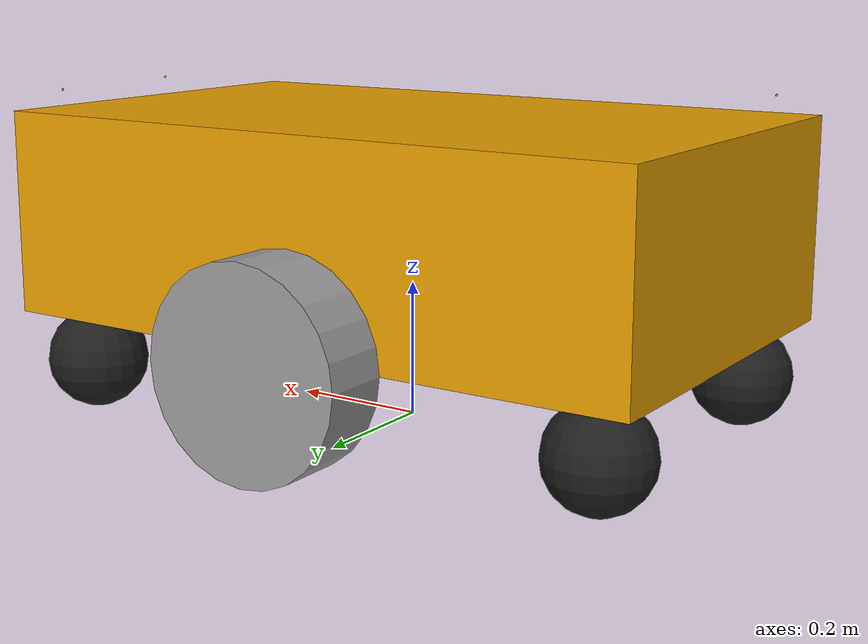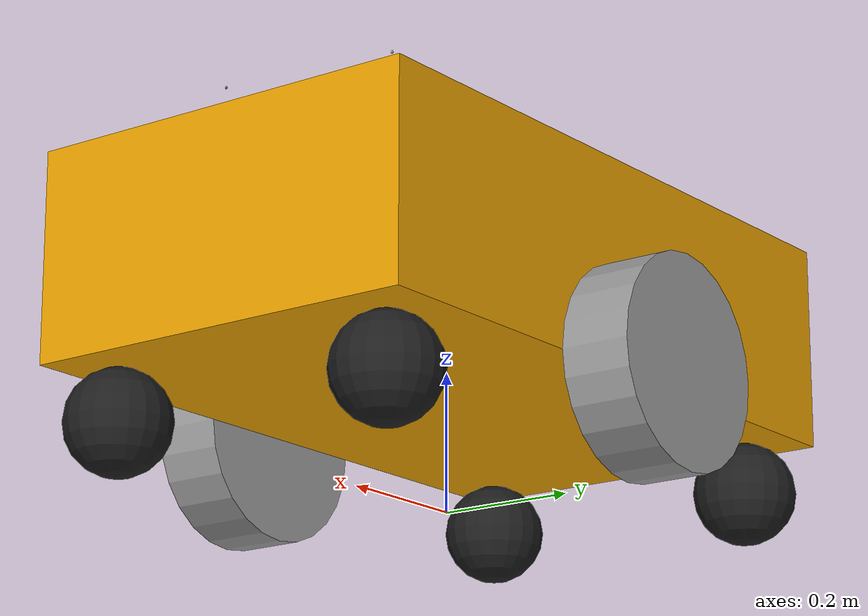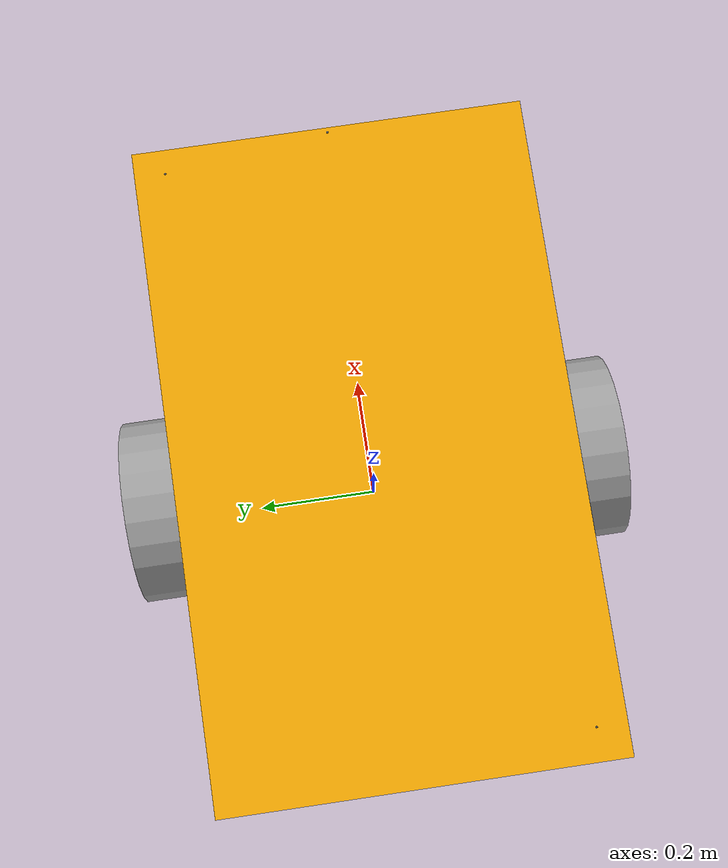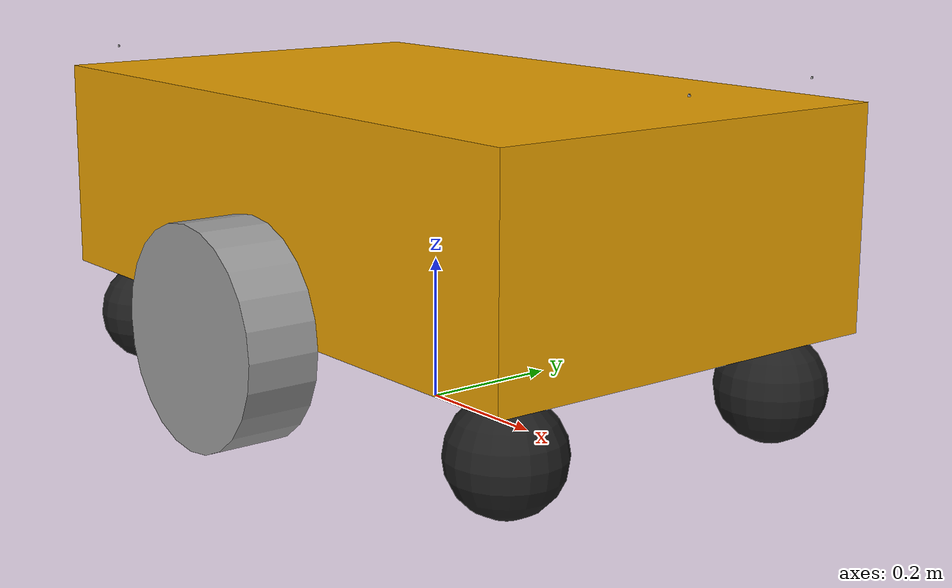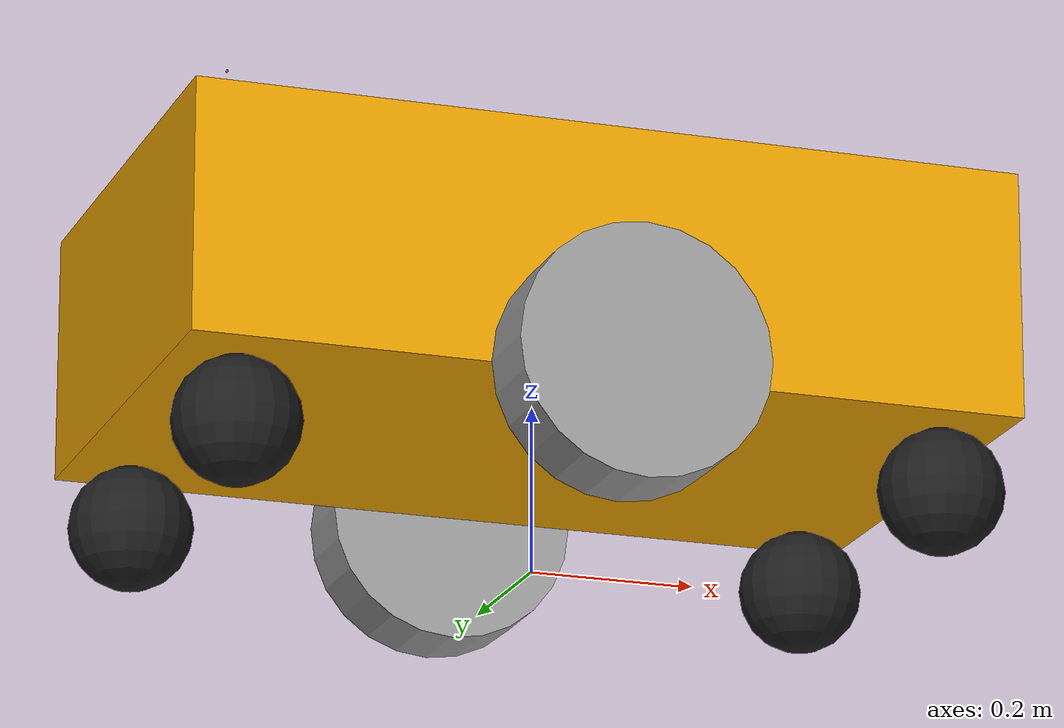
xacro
<?xml version="1.0" ?>
<robot name="carA" xmlns:xacro="http://www.ros.org/wiki/xacro">

<xacro:include filename="$(find car_description)/carA/car.gazebo" />
<xacro:include filename="$(find car_control)/launch/car_control.xacro" />
<xacro:include filename="$(find car_description)/carA/material.xacro" />

  <joint name="carA__link_0_JOINT_0" type="fixed">
    <parent link="carA__base_link"/>
    <child link="carA__link_1"/>
    <origin rpy="0       0       0" xyz="0.425 0.225  0.075"/>
    <axis xyz="0  0  0"/>
    <limit effort="0" lower="0" upper="0" velocity="0"/>
  </joint>

  <joint name="carA__link_0_JOINT_1" type="fixed">
    <parent link="carA__base_link"/>
    <child link="carA__link_1_clone"/>
    <origin rpy="0       0       0" xyz="0.425   -0.225  0.075"/>
    <axis xyz="0  0  0"/>
    <limit effort="0" lower="0" upper="0" velocity="0"/>
  </joint>

  <joint name="carA__link_0_JOINT_2" type="fixed">
    <parent link="carA__base_link"/>
    <child link="carA__link_1_clone_0"/>
    <origin rpy="0       0       0" xyz="-0.425  -0.225  0.075"/>
    <axis xyz="0  0  0"/>
    <limit effort="0" lower="0" upper="0" velocity="0"/>
  </joint>

  <joint name="carA__link_0_JOINT_3" type="fixed">
    <parent link="carA__base_link"/>
    <child link="carA__link_1_clone_1"/>
    <origin rpy="0       0       0" xyz="-0.425  0.225  0.075"/>
    <axis xyz="0  0  0"/>
    <limit effort="0" lower="0" upper="0" velocity="0"/>
  </joint>

  <joint name="carA__link_0_JOINT_4" type="continuous">
    <parent link="carA__base_link"/>
    <child link="carA__right_wheel"/>
    <origin rpy="1.5707   0       0" xyz="0 -0.35  0.15"/>
    <axis xyz="0  0  -1"/>
  </joint>

  <joint name="carA__link_0_JOINT_5" type="continuous">
    <parent link="carA__base_link"/>
    <child link="carA__left_wheel"/>
    <origin rpy="1.5707   0       0" xyz="0  0.35  0.15"/>
    <axis xyz="0  0  -1"/>
  </joint>

  <joint name="carA__link_0_JOINT_7" type="fixed">
    <parent link="carA__base_link"/>
    <child link="carA__front_hokuyo"/>
    <origin rpy="0       0       0.5404195002" xyz="0.45  0.25  0.48"/>
    <axis xyz="0  0  0"/>
    <limit effort="0" lower="0" upper="0" velocity="0"/>
  </joint>

  <joint name="carA__link_0_JOINT_8" type="fixed">
    <parent link="carA__base_link"/>
    <child link="carA__rear_hokuyo"/>
    <origin rpy="0       0       -2.6009805" xyz="-0.45  -0.25  0.48"/>
    <axis xyz="0  0  0"/>
    <limit effort="0" lower="0" upper="0" velocity="0"/>
  </joint>

  <link name="carA__base_link">
    <inertial>
      <mass value="1"/>
      <origin rpy="0  0  0" xyz="0  0  0"/>
      <inertia ixx="0.166667" ixy="0" ixz="0" iyy="0.166667" iyz="0" izz="0.166667"/>
    </inertial>
    <collision name="carA__collision">
      <origin rpy="0       0       0" xyz="0  0 0.3"/>
      <geometry>
        <box size="1 0.6 0.3"/>
      </geometry>
    </collision>
    <visual name="carA__visual">
      <origin rpy="0       0       0" xyz="0  0  0.3"/>
      <geometry>
        <box size="1 0.6 0.3"/>
      </geometry>
    </visual>
  </link>

  <link name="carA__link_1">
    <inertial>
      <mass value="0.1"/>
      <origin rpy="0  0  0" xyz="0  0  0"/>
      <inertia ixx="0.01" ixy="0" ixz="0" iyy="0.01" iyz="0" izz="0.01"/>
    </inertial>
    <collision name="carA__collision">
      <origin rpy="0  0  0" xyz="0  0  0"/>
      <geometry>
        <sphere radius="0.075"/>
      </geometry>
    </collision>
    <visual name="carA__visual">
      <origin rpy="0  0  0" xyz="0  0  0"/>
      <geometry>
        <sphere radius="0.075"/>
      </geometry>
    </visual>
  </link>

  <link name="carA__link_1_clone">
    <inertial>
      <mass value="0.1"/>
      <origin rpy="0  0  0" xyz="0  0  0"/>
      <inertia ixx="0.01" ixy="0" ixz="0" iyy="0.01" iyz="0" izz="0.01"/>
    </inertial>
    <collision name="carA__collision">
      <origin rpy="0  0  0" xyz="0  0  0"/>
      <geometry>
        <sphere radius="0.075"/>
      </geometry>
    </collision>
    <visual name="carA__visual">
      <origin rpy="0  0  0" xyz="0  0  0"/>
      <geometry>
        <sphere radius="0.075"/>
      </geometry>
    </visual>
  </link>

  <link name="carA__link_1_clone_0">
    <inertial>
      <mass value="0.1"/>
      <origin rpy="0  0  0" xyz="0  0  0"/>
      <inertia ixx="0.01" ixy="0" ixz="0" iyy="0.01" iyz="0" izz="0.01"/>
    </inertial>
    <collision name="carA__collision">
      <origin rpy="0  0  0" xyz="0  0  0"/>
      <geometry>
        <sphere radius="0.075"/>
      </geometry>
    </collision>
    <visual name="carA__visual">
      <origin rpy="0  0  0" xyz="0  0  0"/>
      <geometry>
        <sphere radius="0.075"/>
      </geometry>
    </visual>
  </link>

  <link name="carA__link_1_clone_1">
    <inertial>
      <mass value="0.1"/>
      <origin rpy="0  0  0" xyz="0  0  0"/>
      <inertia ixx="0.01" ixy="0" ixz="0" iyy="0.01" iyz="0" izz="0.01"/>
    </inertial>
    <collision name="carA__collision">
      <origin rpy="0  0  0" xyz="0  0  0"/>
      <geometry>
        <sphere radius="0.075"/>
      </geometry>
    </collision>
    <visual name="carA__visual">
      <origin rpy="0  0  0" xyz="0  0  0"/>
      <geometry>
        <sphere radius="0.075"/>
      </geometry>
    </visual>
  </link>

  <link name="carA__left_wheel">
    <inertial>
      <mass value="0.1"/>
      <origin rpy="0  0  0" xyz="0  0  0"/>
      <inertia ixx="0.0145833" ixy="0" ixz="0" iyy="0.0145833" iyz="0" izz="0.0125"/>
    </inertial>
    <collision name="carA__collision">
      <origin rpy="0  0  0" xyz="0  0  0"/>
      <geometry>
        <cylinder length="0.1" radius="0.15"/>
      </geometry>
    </collision>
    <visual name="carA__visual">
      <origin rpy="0  0  0" xyz="0  0  0"/>
      <geometry>
        <cylinder length="0.1" radius="0.15"/>
      </geometry>
    </visual>
  </link>

  <link name="carA__right_wheel">
    <inertial>
      <mass value="0.1"/>
      <origin rpy="0  0  0" xyz="0  0  0"/>
      <inertia ixx="0.0145833" ixy="0" ixz="0" iyy="0.0145833" iyz="0" izz="0.0125"/>
    </inertial>
    <collision name="carA__collision">
      <origin rpy="0  0  0" xyz="0  0  0"/>
      <geometry>
        <cylinder length="0.1" radius="0.15"/>
      </geometry>
    </collision>
    <visual name="carA__visual">
      <origin rpy="0  0  0" xyz="0  0  0"/>
      <geometry>
        <cylinder length="0.1" radius="0.15"/>
      </geometry>
    </visual>
  </link>

  <!-- Lidar -->
  <link name="carA__front_hokuyo">
    <inertial>
      <mass value="0.1"/>
      <origin rpy="0  0  0" xyz="0  0  0"/>
      <inertia ixx="0" ixy="0" ixz="0" iyy="0" iyz="0" izz="0"/>
    </inertial>
    <visual name="carA__visual">
      <origin rpy="0  0  0" xyz="0  0  0"/>
      <geometry>
        <mesh filename="home/yulin/carA_sim_ws/src/car_description/carA/meshes/hokuyo.dae" scale="0.050 0.050 0.050"/>
      </geometry>
    </visual>
  </link>

  <link name="carA__rear_hokuyo">
    <inertial>
      <mass value="0.1"/>
      <origin rpy="0  0  0" xyz="0  0  0"/>
      <inertia ixx="0" ixy="0" ixz="0" iyy="0" iyz="0" izz="0"/>
    </inertial>
    <visual name="carA__visual">
      <origin rpy="0  0  0" xyz="0  0  0"/>
      <geometry>
        <mesh filename="package://car_description/meshes/hokuyo.dae" scale="0.050 0.050 0.050"/>
      </geometry>
    </visual>
  </link>

  <!-- camera -->
  <link name="camera">
      <visual>
        <origin xyz="0 0 0" rpy="0 0 0"/>
        <geometry>
            <mesh filename="package://car_description/meshes/hokuyo.dae" scale="0.050 0.050 0.050"/>
        </geometry>
      </visual>

      <inertial>
        <mass value="1e-5" />
        <origin xyz="0 0 0" rpy="0 0 0"/>
        <inertia ixx="1e-4" ixy="0" ixz="0" iyy="1e-4" iyz="0" izz="1e-4" />
      </inertial>
    </link>

    <joint name="sensor_joint" type="fixed">
        <parent link="carA__base_link"/>
        <child link="camera"/>
        <origin rpy="0 0 0" xyz="0.48 0.0 0.48"/>
        <axis xyz="0 0 1" />
    </joint>

    <!-- IMU -->
    <link name="imu_link">
      <visual>
        <origin xyz="0 0 0" rpy="0 0 0"/>
        <geometry>
            <mesh filename="package://car_description/meshes/hokuyo.dae" scale="0.050 0.050 0.050"/>
        </geometry>
      </visual>

      <inertial>
        <mass value="1e-5" />
        <origin xyz="0 0 0" rpy="0 0 0"/>
        <inertia ixx="1e-4" ixy="0" ixz="0" iyy="1e-4" iyz="0" izz="1e-4" />
      </inertial>
    </link>

    <joint name="imu_joint" type="fixed">
      <origin xyz="0.0 0.0 0.15" rpy="0 0 0"/>
      <parent link="carA__base_link" />
      <child link="imu_link" />
      <axis xyz="0 0 1" />
    </joint>

</robot>

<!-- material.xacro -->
<!-- This file is for Rviz color -->
<robot name="carA" xmlns:xacro="http://www.ros.org/wiki/xacro">

  <material name="black">
    <color rgba="0.0 0.0 0.0 1.0"/>
  </material>

  <material name="blue">
    <color rgba="0.0 0.0 0.8 1.0"/>
  </material>

  <material name="green">
    <color rgba="0.0 0.8 0.0 1.0"/>
  </material>

  <material name="grey">
    <color rgba="0.2 0.2 0.2 1.0"/>
  </material>

  <material name="orange">
    <color rgba="${255/255} ${108/255} ${10/255} 1.0"/>
  </material>

  <material name="brown">
    <color rgba="${222/255} ${207/255} ${195/255} 1.0"/>
  </material>

  <material name="red">
    <color rgba="0.8 0.0 0.0 1.0"/>
  </material>

  <material name="white">
    <color rgba="1.0 1.0 1.0 1.0"/>
  </material>

</robot>
